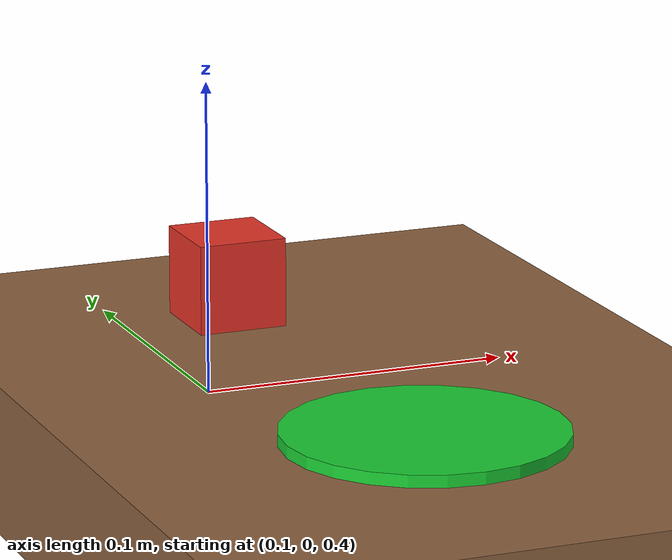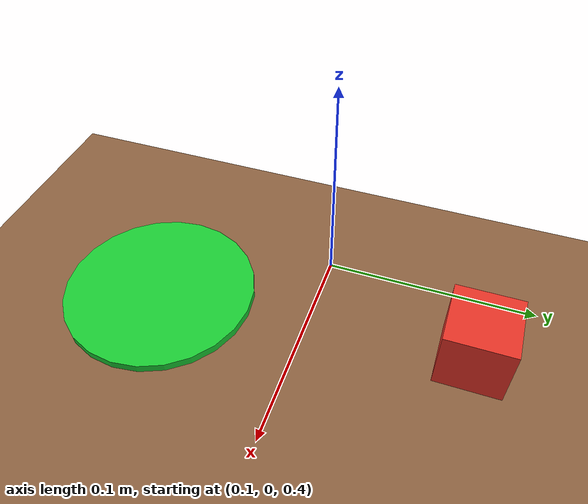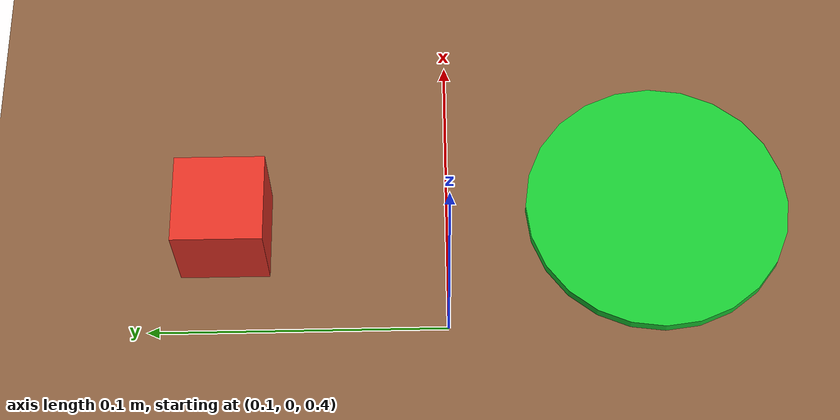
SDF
<?xml version="1.0" ?>

<sdf version="1.8">

  <world name="task2_world">

    <!-- Explicit Earth gravity -->
    <gravity>0 0 -9.81</gravity>

    <!-- Physics -->
    <physics
      name="default_physics"
      type="ignored">

      <!--
        Restored to the physics timestep used by the
        previously stable arm controller.
      -->
      <max_step_size>
        0.001
      </max_step_size>

      <real_time_factor>
        1.0
      </real_time_factor>

    </physics>

    <!-- Gazebo core systems -->
    <plugin
      filename="ignition-gazebo-physics-system"
      name="ignition::gazebo::systems::Physics"/>

    <plugin
      filename="ignition-gazebo-user-commands-system"
      name="ignition::gazebo::systems::UserCommands"/>

    <plugin
      filename="ignition-gazebo-scene-broadcaster-system"
      name="ignition::gazebo::systems::SceneBroadcaster"/>

    <!-- Lighting -->
    <light
      type="directional"
      name="sun">

      <!--
        Shadows are visual only and are unnecessary for the
        Task 2 acceptance demonstration.
      -->
      <cast_shadows>
        false
      </cast_shadows>

      <pose>
        0 0 10 0 0 0
      </pose>

      <diffuse>
        0.8 0.8 0.8 1
      </diffuse>

      <specular>
        0.2 0.2 0.2 1
      </specular>

      <direction>
        -0.5 0.1 -0.9
      </direction>

    </light>

    <!-- Ground -->
    <model name="ground_plane">

      <static>
        true
      </static>

      <link name="ground_link">

        <collision name="ground_collision">

          <geometry>
            <plane>
              <normal>
                0 0 1
              </normal>

              <size>
                4 4
              </size>
            </plane>
          </geometry>

        </collision>

        <visual name="ground_visual">

          <geometry>
            <plane>
              <normal>
                0 0 1
              </normal>

              <size>
                4 4
              </size>
            </plane>
          </geometry>

          <material>
            <ambient>
              0.65 0.65 0.65 1
            </ambient>

            <diffuse>
              0.65 0.65 0.65 1
            </diffuse>
          </material>

        </visual>

      </link>

    </model>

    <!-- Experiment table -->
    <model name="table">

      <static>
        true
      </static>

      <pose>
        0.15 0 0.375 0 0 0
      </pose>

      <link name="table_link">

        <collision name="table_collision">

          <geometry>
            <box>
              <size>
                0.70 0.60 0.05
              </size>
            </box>
          </geometry>

        </collision>

        <visual name="table_visual">

          <geometry>
            <box>
              <size>
                0.70 0.60 0.05
              </size>
            </box>
          </geometry>

          <material>
            <ambient>
              0.45 0.30 0.20 1
            </ambient>

            <diffuse>
              0.55 0.38 0.25 1
            </diffuse>
          </material>

        </visual>

      </link>

    </model>

    <!-- Pickup target object at point A -->
    <model name="target_object">

      <pose>
        0.135 0.075 0.415 0 0 0</pose>

      <link name="object_link">

        <!-- Dynamic wooden block -->
        <gravity>true</gravity>

        <inertial>

          <pose>
            0 0 0 0 0 0
          </pose>

          <mass>
            0.05
          </mass>

          <inertia>

            <ixx>
              0.0000075
            </ixx>

            <iyy>
              0.0000075
            </iyy>

            <izz>
              0.0000075
            </izz>

            <ixy>0</ixy>
            <ixz>0</ixz>
            <iyz>0</iyz>

          </inertia>

        </inertial>

        <collision name="object_collision">

          <geometry>
            <box>
              <size>
                0.03 0.03 0.03
              </size>
            </box>
          </geometry>

          <surface>

            <friction>
              <ode>
                <mu>1.2</mu>
                <mu2>1.2</mu2>
              </ode>
            </friction>

            <contact>
              <ode>
                <kp>1000000.0</kp>
                <kd>100.0</kd>
              </ode>
            </contact>

          </surface>

        </collision>

        <visual name="object_visual">

          <geometry>
            <box>
              <size>
                0.03 0.03 0.03
              </size>
            </box>
          </geometry>

          <material>
            <ambient>
              0.85 0.15 0.10 1
            </ambient>

            <diffuse>
              0.90 0.20 0.15 1
            </diffuse>
          </material>

        </visual>

      </link>

    </model>

    <!-- Placement marker at point B -->
    <model name="place_marker">

      <static>
        true
      </static>

      <pose>
        0.143 -0.072 0.402 0 0 0</pose>

      <link name="marker_link">

        <visual name="marker_visual">

          <geometry>
            <cylinder>
              <radius>
                0.045
              </radius>

              <length>
                0.004
              </length>
            </cylinder>
          </geometry>

          <material>
            <ambient>
              0.10 0.70 0.20 1
            </ambient>

            <diffuse>
              0.10 0.80 0.20 1
            </diffuse>
          </material>

        </visual>

      </link>

    </model>

  </world>

</sdf>
